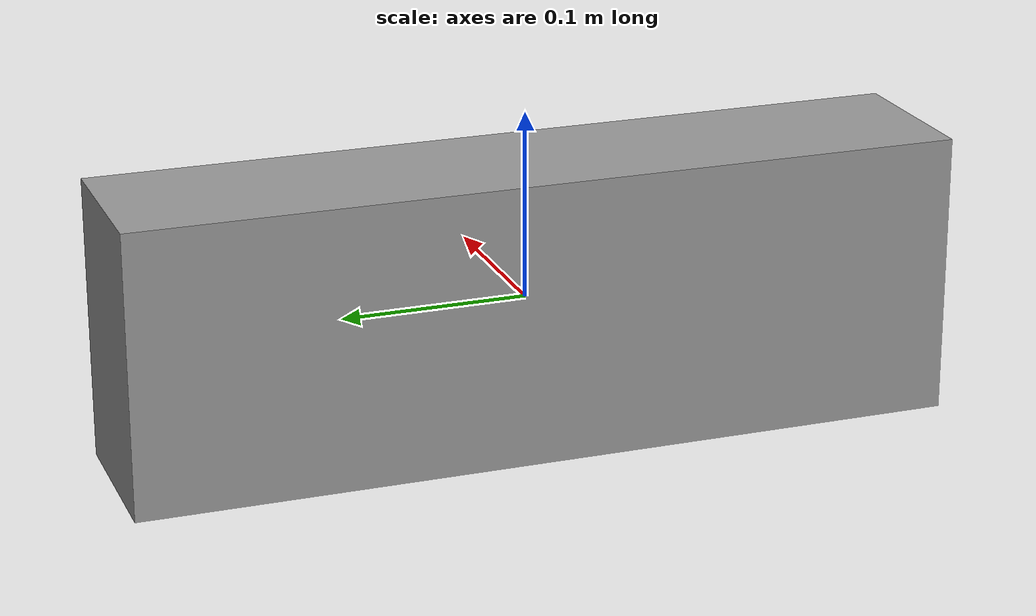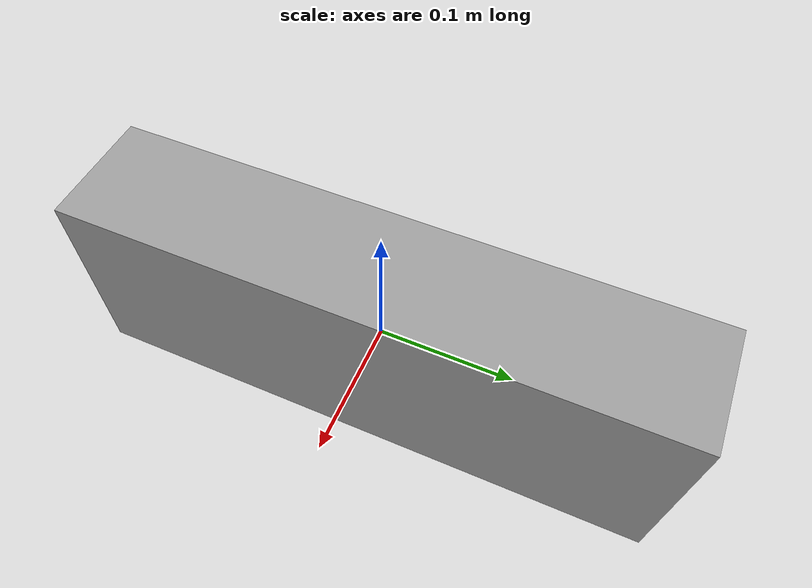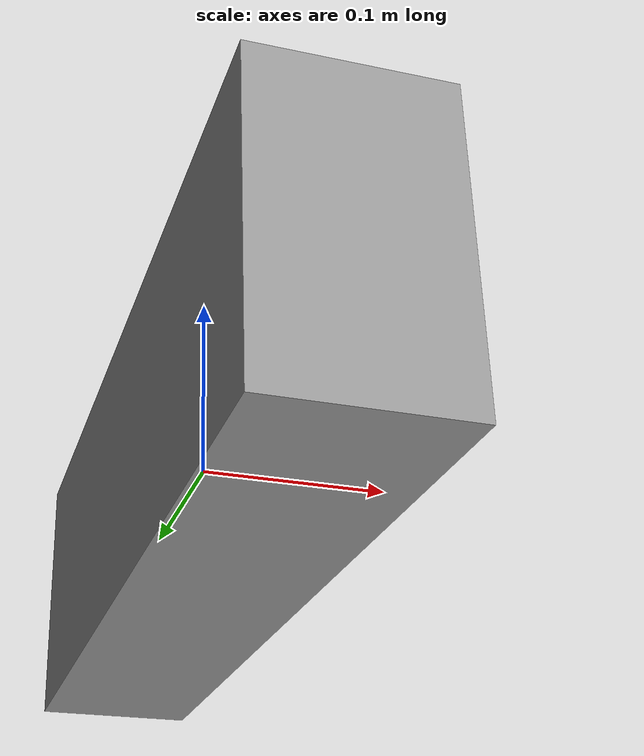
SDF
<?xml version='1.0'?>
<sdf version='1.6'>
  <model name='vehicle_camera'>
    <link name='link_0'>

      <inertial>
        <mass>0.00603968</mass>
        <inertia>
          <ixx>1.55691e-05</ixx>
          <ixy>0</ixy>
          <ixz>0</ixz>
          <iyy>0.000110152</iyy>
          <iyz>0</iyz>
          <izz>0.00010281</izz>
        </inertia>

      </inertial>
      <visual name='visual'>
        <pose frame=''>0 0 0 0 -0 0</pose>
        <geometry>
          <box>
            <size>0.090403 0.442828 0.150878</size>
          </box>
        </geometry>
        <material>
          <lighting>1</lighting>
          <script>
            <uri>file://media/materials/scripts/gazebo.material</uri>
            <name>Gazebo/Grey</name>
          </script>
          <ambient>0.3 0.3 0.3 1</ambient>
          <diffuse>0.7 0.7 0.7 1</diffuse>
          <specular>0.01 0.01 0.01 1</specular>
          <emissive>0 0 0 1</emissive>
        </material>
        <cast_shadows>1</cast_shadows>
        <transparency>0</transparency>
      </visual>
      <collision name='collision'>
        <laser_retro>0</laser_retro>
        <max_contacts>10</max_contacts>
        <pose frame=''>0 0 0 0 -0 0</pose>
        <geometry>
          <box>
            <size>0.442828 0.090403 0.150878</size>
          </box>
        </geometry>
        <surface>
          <friction>
            <ode>
              <mu>1</mu>
              <mu2>1</mu2>
              <fdir1>0 0 0</fdir1>
              <slip1>0</slip1>
              <slip2>0</slip2>
            </ode>
            <torsional>
              <coefficient>1</coefficient>
              <patch_radius>0</patch_radius>
              <surface_radius>0</surface_radius>
              <use_patch_radius>1</use_patch_radius>
              <ode>
                <slip>0</slip>
              </ode>
            </torsional>
          </friction>
          <bounce>
            <restitution_coefficient>0</restitution_coefficient>
            <threshold>1e+06</threshold>
          </bounce>
          <contact>
            <collide_without_contact>0</collide_without_contact>
            <collide_without_contact_bitmask>1</collide_without_contact_bitmask>
            <collide_bitmask>1</collide_bitmask>
            <ode>
              <soft_cfm>0</soft_cfm>
              <soft_erp>0.2</soft_erp>
              <kp>1e+13</kp>
              <kd>1</kd>
              <max_vel>0.01</max_vel>
              <min_depth>0</min_depth>
            </ode>
            <bullet>
              <split_impulse>1</split_impulse>
              <split_impulse_penetration_threshold>-0.01</split_impulse_penetration_threshold>
              <soft_cfm>0</soft_cfm>
              <soft_erp>0.2</soft_erp>
              <kp>1e+13</kp>
              <kd>1</kd>
            </bullet>
          </contact>
        </surface>
      </collision>

<sensor type="camera" name="vehicle_sensor">
      <update_rate>5.0</update_rate>
      <camera name="vehicle_cam">
      <pose>0 0 0 0 0.78539816 </pose>
        <horizontal_fov>1.3962634</horizontal_fov>
        <image>
          <width>200</width>
          <height>200</height>
          <format>R8G8B8</format>
        </image>
        <clip>
          <near>0.02</near>
          <far>300</far>
        </clip>

      </camera>

      <plugin name="camera_controller" filename="libgazebo_ros_camera.so">
        <alwaysOn>true</alwaysOn>
        <updateRate>0.0</updateRate>
        <cameraName>vehicle_cam</cameraName>
        <imageTopicName>image_raw</imageTopicName>
        <cameraInfoTopicName>camera_info</cameraInfoTopicName>
        <frameName>link_0</frameName>
        <hackBaseline>0.07</hackBaseline>
      </plugin>
    </sensor>

    </link>
    <static>0</static>
    <allow_auto_disable>1</allow_auto_disable>

  </model>
</sdf>
